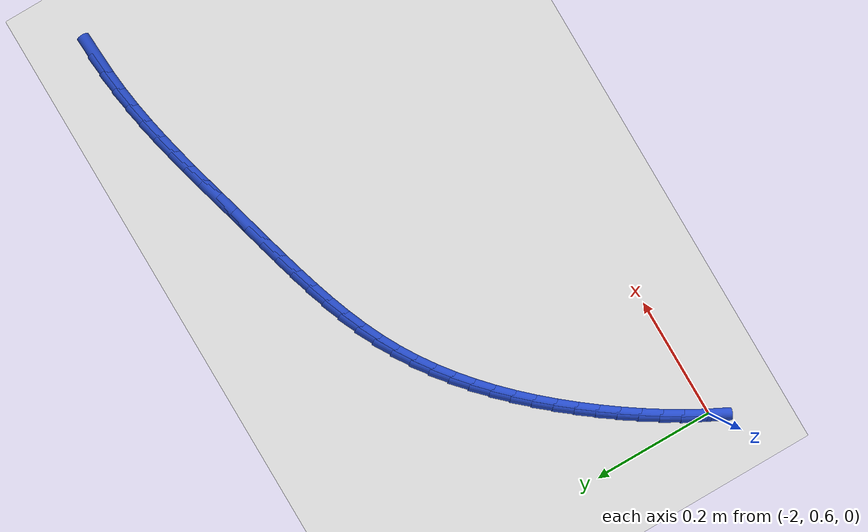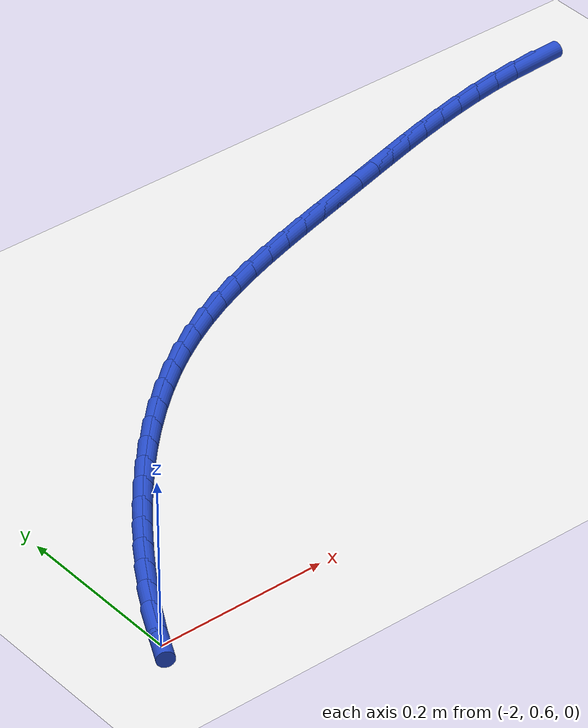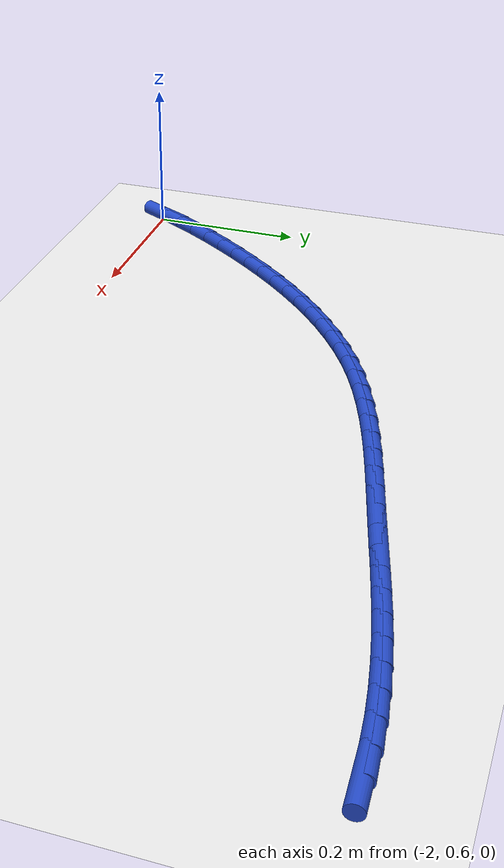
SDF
<sdf version="1.6">
 <world name="default">
  <model name="ground_plane">
   <static>1</static>
   <link name="link">
    <collision name="collision">
     <geometry><plane><normal>0 0 1</normal><size>100 100</size></plane></geometry>
     <surface><friction><ode><mu>100</mu><mu2>50</mu2></ode></friction></surface>
    </collision>
    <visual name="visual">
     <cast_shadows>0</cast_shadows>
     <geometry><plane><normal>0 0 1</normal><size>100 100</size></plane></geometry>
     <material>
      <script><uri>file://media/materials/scripts/gazebo.material</uri><name>Gazebo/WhiteGlow</name></script>
     </material>
    </visual>
   </link>
  </model>
  <model name="line">
   <link name="link_51">
    <pose>-1.0403570908208986 1.139250774086133 0.01 0 1.57 0.05039946119216887</pose>
    <collision name="collision">
     <geometry><cylinder><radius>0.01</radius><length>0.08</length></cylinder></geometry>
    </collision>
    <visual name="visual">
     <material>
      <script><name>Gazebo/Blue</name><uri>file://media/materials/scripts/gazebo.material</uri></script>
     </material>
     <geometry><cylinder><radius>0.01</radius><length>0.08</length></cylinder></geometry>
    </visual>
   </link>
   <link name="link_52">
    <pose>-1.0728175806358928 1.137613396283708 0.01 0 1.57 0.09688881395748895</pose>
    <collision name="collision">
     <geometry><cylinder><radius>0.01</radius><length>0.08</length></cylinder></geometry>
    </collision>
    <visual name="visual">
     <material>
      <script><name>Gazebo/Blue</name><uri>file://media/materials/scripts/gazebo.material</uri></script>
     </material>
     <geometry><cylinder><radius>0.01</radius><length>0.08</length></cylinder></geometry>
    </visual>
   </link>
   <link name="link_53">
    <pose>-1.105122003650213 1.1344736281005992 0.01 0 1.57 0.13788859822676158</pose>
    <collision name="collision">
     <geometry><cylinder><radius>0.01</radius><length>0.08</length></cylinder></geometry>
    </collision>
    <visual name="visual">
     <material>
      <script><name>Gazebo/Blue</name><uri>file://media/materials/scripts/gazebo.material</uri></script>
     </material>
     <geometry><cylinder><radius>0.01</radius><length>0.08</length></cylinder></geometry>
    </visual>
   </link>
   <link name="link_54">
    <pose>-1.1372948254822375 1.1300090313449087 0.01 0 1.57 0.17325404245516116</pose>
    <collision name="collision">
     <geometry><cylinder><radius>0.01</radius><length>0.08</length></cylinder></geometry>
    </collision>
    <visual name="visual">
     <material>
      <script><name>Gazebo/Blue</name><uri>file://media/materials/scripts/gazebo.material</uri></script>
     </material>
     <geometry><cylinder><radius>0.01</radius><length>0.08</length></cylinder></geometry>
    </visual>
   </link>
   <link name="link_55">
    <pose>-1.1693605563325442 1.1243972516377043 0.01 0 1.57 0.20294175754099097</pose>
    <collision name="collision">
     <geometry><cylinder><radius>0.01</radius><length>0.08</length></cylinder></geometry>
    </collision>
    <visual name="visual">
     <material>
      <script><name>Gazebo/Blue</name><uri>file://media/materials/scripts/gazebo.material</uri></script>
     </material>
     <geometry><cylinder><radius>0.01</radius><length>0.08</length></cylinder></geometry>
    </visual>
   </link>
   <link name="link_56">
    <pose>-1.2013437064017087 1.1178159346000511 0.01 0 1.57 0.2269737903030332</pose>
    <collision name="collision">
     <geometry><cylinder><radius>0.01</radius><length>0.08</length></cylinder></geometry>
    </collision>
    <visual name="visual">
     <material>
      <script><name>Gazebo/Blue</name><uri>file://media/materials/scripts/gazebo.material</uri></script>
     </material>
     <geometry><cylinder><radius>0.01</radius><length>0.08</length></cylinder></geometry>
    </visual>
   </link>
   <link name="link_57">
    <pose>-1.2332687858903064 1.1104427258530152 0.01 0 1.57 0.24540875320758465</pose>
    <collision name="collision">
     <geometry><cylinder><radius>0.01</radius><length>0.08</length></cylinder></geometry>
    </collision>
    <visual name="visual">
     <material>
      <script><name>Gazebo/Blue</name><uri>file://media/materials/scripts/gazebo.material</uri></script>
     </material>
     <geometry><cylinder><radius>0.01</radius><length>0.08</length></cylinder></geometry>
    </visual>
   </link>
   <link name="link_58">
    <pose>-1.265160304998914 1.1024552710176632 0.01 0 1.57 0.258318804709631</pose>
    <collision name="collision">
     <geometry><cylinder><radius>0.01</radius><length>0.08</length></cylinder></geometry>
    </collision>
    <visual name="visual">
     <material>
      <script><name>Gazebo/Blue</name><uri>file://media/materials/scripts/gazebo.material</uri></script>
     </material>
     <geometry><cylinder><radius>0.01</radius><length>0.08</length></cylinder></geometry>
    </visual>
   </link>
   <link name="link_59">
    <pose>-1.2970427739281072 1.0940312157150605 0.01 0 1.57 0.26577271081590753</pose>
    <collision name="collision">
     <geometry><cylinder><radius>0.01</radius><length>0.08</length></cylinder></geometry>
    </collision>
    <visual name="visual">
     <material>
      <script><name>Gazebo/Blue</name><uri>file://media/materials/scripts/gazebo.material</uri></script>
     </material>
     <geometry><cylinder><radius>0.01</radius><length>0.08</length></cylinder></geometry>
    </visual>
   </link>
   <link name="link_60">
    <pose>-1.3289407028784626 1.0853482055662735 0.01 0 1.57 0.2678246117012308</pose>
    <collision name="collision">
     <geometry><cylinder><radius>0.01</radius><length>0.08</length></cylinder></geometry>
    </collision>
    <visual name="visual">
     <material>
      <script><name>Gazebo/Blue</name><uri>file://media/materials/scripts/gazebo.material</uri></script>
     </material>
     <geometry><cylinder><radius>0.01</radius><length>0.08</length></cylinder></geometry>
    </visual>
   </link>
   <link name="link_61">
    <pose>-1.3608786020505554 1.0765838861923682 0.01 0 1.57 0.26490346352238087</pose>
    <collision name="collision">
     <geometry><cylinder><radius>0.01</radius><length>0.08</length></cylinder></geometry>
    </collision>
    <visual name="visual">
     <material>
      <script><name>Gazebo/Blue</name><uri>file://media/materials/scripts/gazebo.material</uri></script>
     </material>
     <geometry><cylinder><radius>0.01</radius><length>0.08</length></cylinder></geometry>
    </visual>
   </link>
   <link name="link_62">
    <pose>-1.3928767919007268 1.0679034520990252 0.01 0 1.57 0.26329984823263525</pose>
    <collision name="collision">
     <geometry><cylinder><radius>0.01</radius><length>0.08</length></cylinder></geometry>
    </collision>
    <visual name="visual">
     <material>
      <script><name>Gazebo/Blue</name><uri>file://media/materials/scripts/gazebo.material</uri></script>
     </material>
     <geometry><cylinder><radius>0.01</radius><length>0.08</length></cylinder></geometry>
    </visual>
   </link>
   <link name="link_63">
    <pose>-1.4248890332738946 1.059274295407003 0.01 0 1.57 0.2680458417435618</pose>
    <collision name="collision">
     <geometry><cylinder><radius>0.01</radius><length>0.08</length></cylinder></geometry>
    </collision>
    <visual name="visual">
     <material>
      <script><name>Gazebo/Blue</name><uri>file://media/materials/scripts/gazebo.material</uri></script>
     </material>
     <geometry><cylinder><radius>0.01</radius><length>0.08</length></cylinder></geometry>
    </visual>
   </link>
   <link name="link_64">
    <pose>-1.4568157956872474 1.0505054366436206 0.01 0 1.57 0.2793286706221039</pose>
    <collision name="collision">
     <geometry><cylinder><radius>0.01</radius><length>0.08</length></cylinder></geometry>
    </collision>
    <visual name="visual">
     <material>
      <script><name>Gazebo/Blue</name><uri>file://media/materials/scripts/gazebo.material</uri></script>
     </material>
     <geometry><cylinder><radius>0.01</radius><length>0.08</length></cylinder></geometry>
    </visual>
   </link>
   <link name="link_65">
    <pose>-1.4885560537555766 1.0414014537733083 0.01 0 1.57 0.29724277095952634</pose>
    <collision name="collision">
     <geometry><cylinder><radius>0.01</radius><length>0.08</length></cylinder></geometry>
    </collision>
    <visual name="visual">
     <material>
      <script><name>Gazebo/Blue</name><uri>file://media/materials/scripts/gazebo.material</uri></script>
     </material>
     <geometry><cylinder><radius>0.01</radius><length>0.08</length></cylinder></geometry>
    </visual>
   </link>
   <link name="link_66">
    <pose>-1.5200087820936747 1.0317669247604964 0.01 0 1.57 0.32191779578032237</pose>
    <collision name="collision">
     <geometry><cylinder><radius>0.01</radius><length>0.08</length></cylinder></geometry>
    </collision>
    <visual name="visual">
     <material>
      <script><name>Gazebo/Blue</name><uri>file://media/materials/scripts/gazebo.material</uri></script>
     </material>
     <geometry><cylinder><radius>0.01</radius><length>0.08</length></cylinder></geometry>
    </visual>
   </link>
   <link name="link_67">
    <pose>-1.551072955316332 1.0214064275696155 0.01 0 1.57 0.3534960953901173</pose>
    <collision name="collision">
     <geometry><cylinder><radius>0.01</radius><length>0.08</length></cylinder></geometry>
    </collision>
    <visual name="visual">
     <material>
      <script><name>Gazebo/Blue</name><uri>file://media/materials/scripts/gazebo.material</uri></script>
     </material>
     <geometry><cylinder><radius>0.01</radius><length>0.08</length></cylinder></geometry>
    </visual>
   </link>
   <link name="link_68">
    <pose>-1.5816475480383407 1.010124540165096 0.01 0 1.57 0.39209900973172196</pose>
    <collision name="collision">
     <geometry><cylinder><radius>0.01</radius><length>0.08</length></cylinder></geometry>
    </collision>
    <visual name="visual">
     <material>
      <script><name>Gazebo/Blue</name><uri>file://media/materials/scripts/gazebo.material</uri></script>
     </material>
     <geometry><cylinder><radius>0.01</radius><length>0.08</length></cylinder></geometry>
    </visual>
   </link>
   <link name="link_69">
    <pose>-1.6116315348744923 0.9977258405113676 0.01 0 1.57 0.4377806223246309</pose>
    <collision name="collision">
     <geometry><cylinder><radius>0.01</radius><length>0.08</length></cylinder></geometry>
    </collision>
    <visual name="visual">
     <material>
      <script><name>Gazebo/Blue</name><uri>file://media/materials/scripts/gazebo.material</uri></script>
     </material>
     <geometry><cylinder><radius>0.01</radius><length>0.08</length></cylinder></geometry>
    </visual>
   </link>
   <link name="link_70">
    <pose>-1.6409238904395784 0.9840149065728618 0.01 0 1.57 0.49045930680570843</pose>
    <collision name="collision">
     <geometry><cylinder><radius>0.01</radius><length>0.08</length></cylinder></geometry>
    </collision>
    <visual name="visual">
     <material>
      <script><name>Gazebo/Blue</name><uri>file://media/materials/scripts/gazebo.material</uri></script>
     </material>
     <geometry><cylinder><radius>0.01</radius><length>0.08</length></cylinder></geometry>
    </visual>
   </link>
   <link name="link_71">
    <pose>-1.669423702078045 0.9687966263965939 0.01 0 1.57 0.5471418355182243</pose>
    <collision name="collision">
     <geometry><cylinder><radius>0.01</radius><length>0.08</length></cylinder></geometry>
    </collision>
    <visual name="visual">
     <material>
      <script><name>Gazebo/Blue</name><uri>file://media/materials/scripts/gazebo.material</uri></script>
     </material>
     <geometry><cylinder><radius>0.01</radius><length>0.08</length></cylinder></geometry>
    </visual>
   </link>
   <link name="link_72">
    <pose>-1.6970608655327308 0.9519606319047175 0.01 0 1.57 0.6011597167612089</pose>
    <collision name="collision">
     <geometry><cylinder><radius>0.01</radius><length>0.08</length></cylinder></geometry>
    </collision>
    <visual name="visual">
     <material>
      <script><name>Gazebo/Blue</name><uri>file://media/materials/scripts/gazebo.material</uri></script>
     </material>
     <geometry><cylinder><radius>0.01</radius><length>0.08</length></cylinder></geometry>
    </visual>
   </link>
   <link name="link_73">
    <pose>-1.7238377643990959 0.9335959455055023 0.01 0 1.57 0.651563162706398</pose>
    <collision name="collision">
     <geometry><cylinder><radius>0.01</radius><length>0.08</length></cylinder></geometry>
    </collision>
    <visual name="visual">
     <material>
      <script><name>Gazebo/Blue</name><uri>file://media/materials/scripts/gazebo.material</uri></script>
     </material>
     <geometry><cylinder><radius>0.01</radius><length>0.08</length></cylinder></geometry>
    </visual>
   </link>
   <link name="link_74">
    <pose>-1.7497671992046833 0.9138202431964282 0.01 0 1.57 0.6984129220808186</pose>
    <collision name="collision">
     <geometry><cylinder><radius>0.01</radius><length>0.08</length></cylinder></geometry>
    </collision>
    <visual name="visual">
     <material>
      <script><name>Gazebo/Blue</name><uri>file://media/materials/scripts/gazebo.material</uri></script>
     </material>
     <geometry><cylinder><radius>0.01</radius><length>0.08</length></cylinder></geometry>
    </visual>
   </link>
   <link name="link_75">
    <pose>-1.7748619704770363 0.8927512009749745 0.01 0 1.57 0.7418250266413672</pose>
    <collision name="collision">
     <geometry><cylinder><radius>0.01</radius><length>0.08</length></cylinder></geometry>
    </collision>
    <visual name="visual">
     <material>
      <script><name>Gazebo/Blue</name><uri>file://media/materials/scripts/gazebo.material</uri></script>
     </material>
     <geometry><cylinder><radius>0.01</radius><length>0.08</length></cylinder></geometry>
    </visual>
   </link>
   <link name="link_76">
    <pose>-1.7991348787436974 0.87050649483862 0.01 0 1.57 0.7819523002345278</pose>
    <collision name="collision">
     <geometry><cylinder><radius>0.01</radius><length>0.08</length></cylinder></geometry>
    </collision>
    <visual name="visual">
     <material>
      <script><name>Gazebo/Blue</name><uri>file://media/materials/scripts/gazebo.material</uri></script>
     </material>
     <geometry><cylinder><radius>0.01</radius><length>0.08</length></cylinder></geometry>
    </visual>
   </link>
   <link name="link_77">
    <pose>-1.8225987245322093 0.8472038007848455 0.01 0 1.57 0.8189690535020485</pose>
    <collision name="collision">
     <geometry><cylinder><radius>0.01</radius><length>0.08</length></cylinder></geometry>
    </collision>
    <visual name="visual">
     <material>
      <script><name>Gazebo/Blue</name><uri>file://media/materials/scripts/gazebo.material</uri></script>
     </material>
     <geometry><cylinder><radius>0.01</radius><length>0.08</length></cylinder></geometry>
    </visual>
   </link>
   <link name="link_78">
    <pose>-1.8452663083701153 0.8229607948111292 0.01 0 1.57 0.8530590569191054</pose>
    <collision name="collision">
     <geometry><cylinder><radius>0.01</radius><length>0.08</length></cylinder></geometry>
    </collision>
    <visual name="visual">
     <material>
      <script><name>Gazebo/Blue</name><uri>file://media/materials/scripts/gazebo.material</uri></script>
     </material>
     <geometry><cylinder><radius>0.01</radius><length>0.08</length></cylinder></geometry>
    </visual>
   </link>
   <link name="link_79">
    <pose>-1.8671504307849591 0.7978951529149511 0.01 0 1.57 0.8844064954097625</pose>
    <collision name="collision">
     <geometry><cylinder><radius>0.01</radius><length>0.08</length></cylinder></geometry>
    </collision>
    <visual name="visual">
     <material>
      <script><name>Gazebo/Blue</name><uri>file://media/materials/scripts/gazebo.material</uri></script>
     </material>
     <geometry><cylinder><radius>0.01</radius><length>0.08</length></cylinder></geometry>
    </visual>
   </link>
   <link name="link_80">
    <pose>-1.8882638923042823 0.7721245510937905 0.01 0 1.57 0.913189422791282</pose>
    <collision name="collision">
     <geometry><cylinder><radius>0.01</radius><length>0.08</length></cylinder></geometry>
    </collision>
    <visual name="visual">
     <material>
      <script><name>Gazebo/Blue</name><uri>file://media/materials/scripts/gazebo.material</uri></script>
     </material>
     <geometry><cylinder><radius>0.01</radius><length>0.08</length></cylinder></geometry>
    </visual>
   </link>
   <link name="link_81">
    <pose>-1.908619493455628 0.7457666653451269 0.01 0 1.57 0.9396891827721153</pose>
    <collision name="collision">
     <geometry><cylinder><radius>0.01</radius><length>0.08</length></cylinder></geometry>
    </collision>
    <visual name="visual">
     <material>
      <script><name>Gazebo/Blue</name><uri>file://media/materials/scripts/gazebo.material</uri></script>
     </material>
     <geometry><cylinder><radius>0.01</radius><length>0.08</length></cylinder></geometry>
    </visual>
   </link>
   <link name="link_82">
    <pose>-1.9282277888019796 0.7189358245520383 0.01 0 1.57 0.9663573533749461</pose>
    <collision name="collision">
     <geometry><cylinder><radius>0.01</radius><length>0.08</length></cylinder></geometry>
    </collision>
    <visual name="visual">
     <material>
      <script><name>Gazebo/Blue</name><uri>file://media/materials/scripts/gazebo.material</uri></script>
     </material>
     <geometry><cylinder><radius>0.01</radius><length>0.08</length></cylinder></geometry>
    </visual>
   </link>
   <link name="link_83">
    <pose>-1.9470537481024932 0.691678423509938 0.01 0 1.57 0.9954213637195964</pose>
    <collision name="collision">
     <geometry><cylinder><radius>0.01</radius><length>0.08</length></cylinder></geometry>
    </collision>
    <visual name="visual">
     <material>
      <script><name>Gazebo/Blue</name><uri>file://media/materials/scripts/gazebo.material</uri></script>
     </material>
     <geometry><cylinder><radius>0.01</radius><length>0.08</length></cylinder></geometry>
    </visual>
   </link>
   <link name="link_84">
    <pose>-1.965019894553194 0.6639775997815843 0.01 0 1.57 1.027012366018567</pose>
    <collision name="collision">
     <geometry><cylinder><radius>0.01</radius><length>0.08</length></cylinder></geometry>
    </collision>
    <visual name="visual">
     <material>
      <script><name>Gazebo/Blue</name><uri>file://media/materials/scripts/gazebo.material</uri></script>
     </material>
     <geometry><cylinder><radius>0.01</radius><length>0.08</length></cylinder></geometry>
    </visual>
   </link>
   <link name="link_85">
    <pose>-1.982047134034897 0.6358140806784229 0.01 0 1.57 1.06116506006598</pose>
    <collision name="collision">
     <geometry><cylinder><radius>0.01</radius><length>0.08</length></cylinder></geometry>
    </collision>
    <visual name="visual">
     <material>
      <script><name>Gazebo/Blue</name><uri>file://media/materials/scripts/gazebo.material</uri></script>
     </material>
     <geometry><cylinder><radius>0.01</radius><length>0.08</length></cylinder></geometry>
    </visual>
   </link>
   <link name="link_86">
    <pose>-1.9980563724284144 0.6071685935118993 0.01 0 1.57 1.097893426994749</pose>
    <collision name="collision">
     <geometry><cylinder><radius>0.01</radius><length>0.08</length></cylinder></geometry>
    </collision>
    <visual name="visual">
     <material>
      <script><name>Gazebo/Blue</name><uri>file://media/materials/scripts/gazebo.material</uri></script>
     </material>
     <geometry><cylinder><radius>0.01</radius><length>0.08</length></cylinder></geometry>
    </visual>
   </link>
  </model>
 </world>
</sdf>
